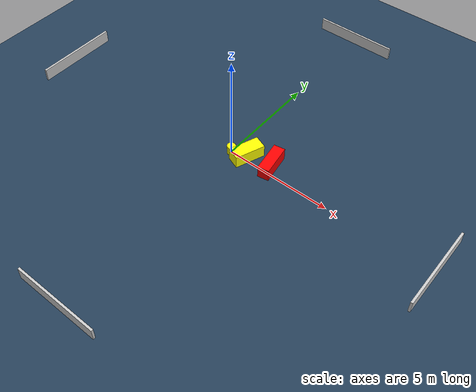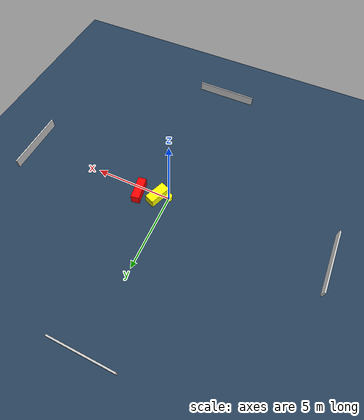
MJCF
<?xml version="1.0" ?>
<mujoco model="generated_environment">
  <option timestep="0.01" integrator="RK4" cone="elliptic"/>
  <default>
    <geom density="1"/>
  </default>
  <asset>
    <texture builtin="gradient" height="3072" name="skybox" rgb1="0.3 0.5 0.7" rgb2="0 0 0" type="skybox" width="512"/>
    <texture builtin="checker" height="300" name="groundplane" rgb1="0.2 0.3 0.4" rgb2="0.1 0.2 0.3" type="2d" width="300"/>
    <material name="groundplane" reflectance="0.2" texrepeat="5 5" texture="groundplane"/>
  </asset>
  <worldbody>
    <light dir="0 0 -1" directional="true" pos="0 0 1.5"/>
    <geom condim="3" friction="0.5 0.005 0.001" material="groundplane" name="floor" pos="0 0 0" size="0 0 0.05" type="plane"/>
    <body name="walls">
      <geom name="wall_1" condim="4" pos="-10.0 0.0 0.3" rgba="0.800000011920929 0.800000011920929 0.800000011920929 1.0" size="0.05 2.0 0.3" type="box"/>
      <geom name="wall_2" condim="4" pos="10.0 0.0 0.3" rgba="0.800000011920929 0.800000011920929 0.800000011920929 1.0" size="0.05 2.0 0.3" type="box"/>
      <geom name="wall_3" condim="4" pos="0.0 -10.0 0.3" rgba="0.800000011920929 0.800000011920929 0.800000011920929 1.0" size="2.0 0.05 0.3" type="box"/>
      <geom name="wall_4" condim="4" pos="0.0 10.0 0.3" rgba="0.800000011920929 0.800000011920929 0.800000011920929 1.0" size="2.0 0.05 0.3" type="box"/>
    </body>
    <body name="robot">
      <joint name="joint_x" type="slide" pos="0 0 0" axis="1 0 0"/>
      <joint name="joint_y" type="slide" pos="0 0 0" axis="0 1 0"/>
      <geom name="robot" type="cylinder" pos="0.0 0.0 0.2" size="0.2 0.2 0.0" mass="5.0" friction="1.0 0.005 0.0001" condim="4" rgba="1.0 1.0 0.0 1.0"/>
    </body>
    <body name="obstacle_1_movable">
      <geom name="obstacle_1_movable" condim="4" pos="0.7002716075944603 0.19446678465395628 0.3" euler="0 0 249.31363430690428" friction="0.0 0.005 0.001" rgba="1.0 1.0 0.0 1.0" size="0.7065863713561684 0.31504146675202344 0.3" type="box" mass="0.1"/>
      <joint type="free"/>
    </body>
    <body name="obstacle_2_static">
      <geom name="obstacle_2_static" condim="4" pos="1.8933969908208272 0.3916333754265403 0.3" euler="0 0 9.003393297646118" friction="0.0 0.005 0.001" rgba="1.0 0.0 0.0 1.0" size="0.2619599789238937 0.7401169522830326 0.3" type="box"/>
    </body>
  </worldbody>
  <actuator>
    <motor name="actuator_x" joint="joint_x" gear="1" ctrlrange="-1 1"/>
    <motor name="actuator_y" joint="joint_y" gear="1" ctrlrange="-1 1"/>
  </actuator>
</mujoco>
